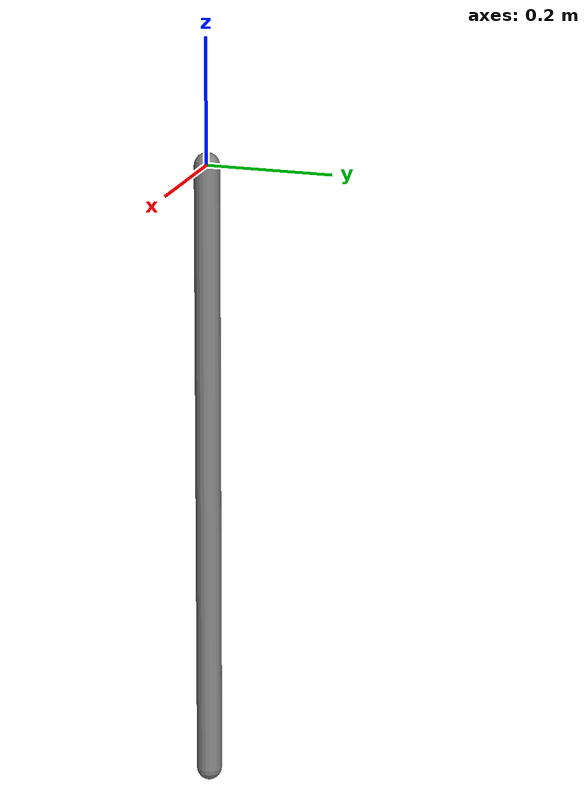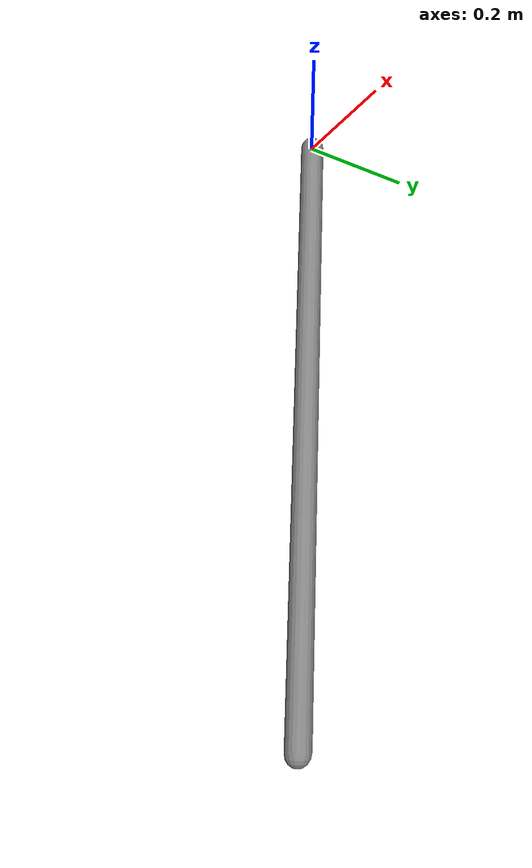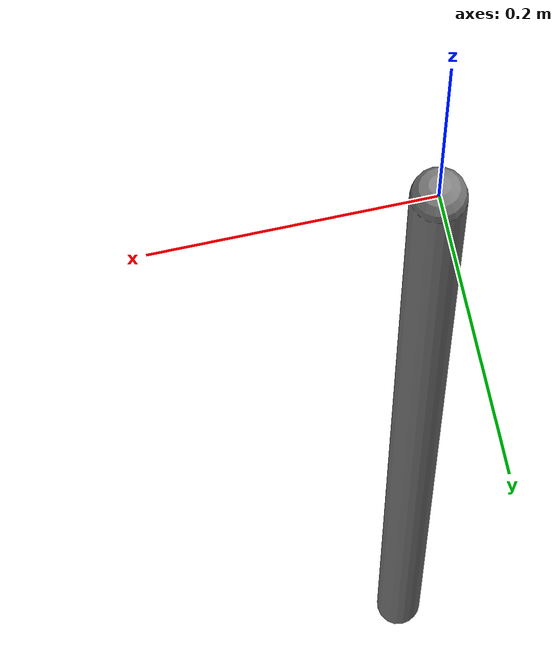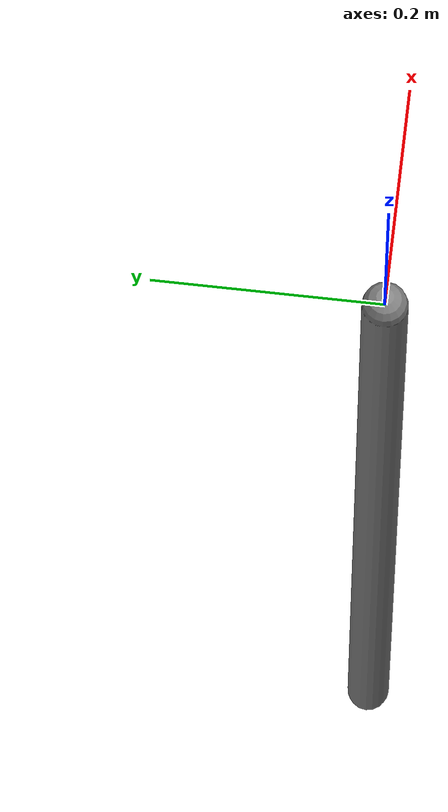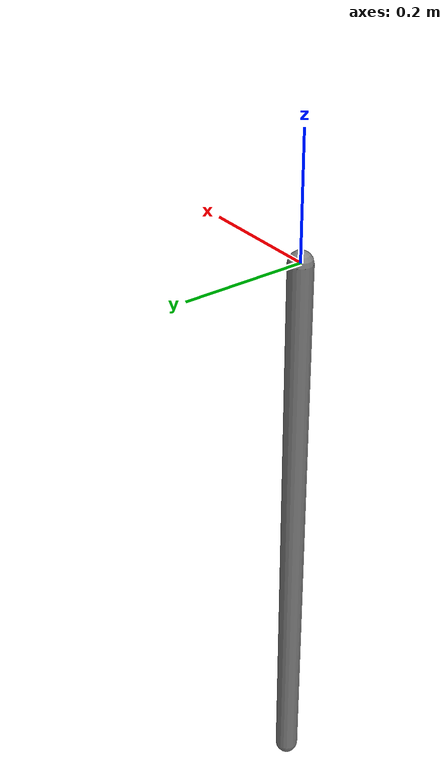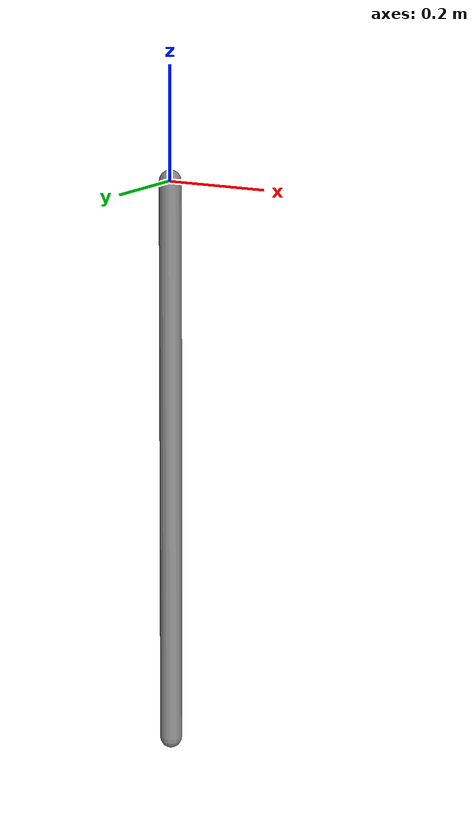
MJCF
<mujoco model="tendon-actuator">
      <compiler angle="radian"/>
      <option gravity="0 0 -9.81" timestep="0.002"/>
      <worldbody>
        <body name="link" pos="0 0 0">
          <joint name="hinge" type="hinge" axis="0 1 0"/>
          <inertial pos="0 0 -0.5" mass="1.0" diaginertia="0.1 0.1 0.001"/>
          <geom type="capsule" size="0.02" fromto="0 0 0  0 0 -1" rgba="0.5 0.5 0.5 1"/>
          <site name="tip" pos="0 0 -1"/>
        </body>
        <site name="anchor" pos="0 0 0"/>
      </worldbody>
      <tendon>
        <spatial name="ten">
          <site site="anchor"/>
          <site site="tip"/>
        </spatial>
      </tendon>
      <actuator>
        <motor name="ten_motor" tendon="ten" gear="5"/>
      </actuator>
    </mujoco>
